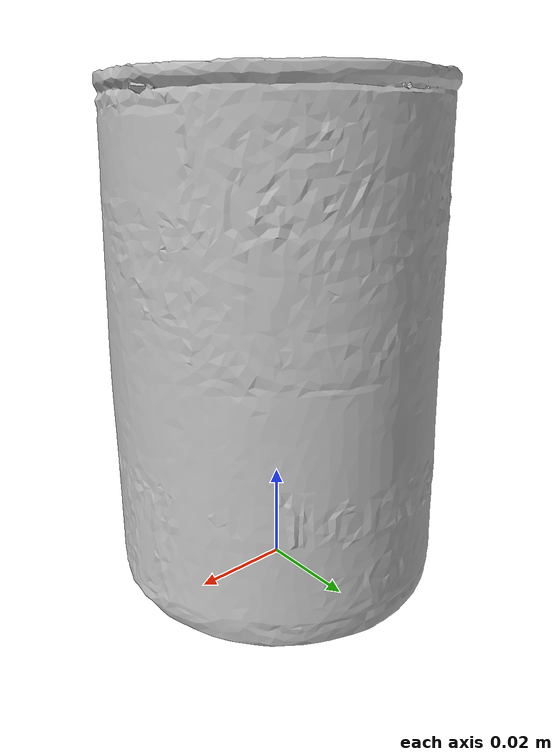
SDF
<?xml version="1.0" ?>
<sdf version="1.4">
  <model name='ycb_005_tomato_soup_can_aruco'>
    <include>
      <uri>model://ycb_005_tomato_soup_can</uri>
      <pose>0.0 0.0 0.0 0 0 0</pose>
    </include>
    <link name='marker'>
      <pose frame=''>0 0 0.1 0 0 0</pose>
      <visual name='visual'>
        <geometry>
          <box>
            <size>0.04 0.04 1e-5</size>
          </box>
        </geometry>
        <material>
          <script>
            <uri>model://aruco_visual_marker_0/materials/scripts</uri>
            <uri>model://aruco_visual_marker_0/materials/textures</uri>
            <name>ArucoVisualMarker0/Marker</name>
          </script>
          <ambient>1 1 1 1</ambient>
          <diffuse>1 1 1 1</diffuse>
          <specular>0 0 0 1</specular>
          <emissive>1 1 1 0</emissive>
          <shader type='vertex'>
            <normal_map>__default__</normal_map>
          </shader>
        </material>
        <pose frame=''>0 0 0 0 -0 0</pose>
        <cast_shadows>1</cast_shadows>
        <transparency>0</transparency>
      </visual>
      <collision name='collision'>
        <laser_retro>0</laser_retro>
        <max_contacts>10</max_contacts>
        <pose frame=''>0 0 0 0 -0 0</pose>
        <geometry>
          <box>
            <size>0.045 0.045 1e-05</size>
          </box>
        </geometry>
      </collision>
    </link>

    <link name='marker_pad'>
      <pose frame='marker'>0 0 -1e-5 0 -0 0</pose>
      <visual name='visual'>
        <geometry>
          <box>
            <size>0.045 0.045 1e-5</size>
          </box>
        </geometry>
        <material>
          <lighting>1</lighting>
          <script>
            <uri>file://media/materials/scripts/gazebo.material</uri>
            <name>Gazebo/White</name>
          </script>
          <ambient>0.3 0.3 0.3 1</ambient>
          <diffuse>0.7 0.7 0.7 1</diffuse>
          <specular>0.01 0.01 0.01 1</specular>
          <emissive>1 1 1 0</emissive>
          <shader type='vertex'>
            <normal_map>__default__</normal_map>
          </shader>
        </material>
        <cast_shadows>1</cast_shadows>
        <transparency>0</transparency>
      </visual>
      <collision name='collision'>
        <laser_retro>0</laser_retro>
        <max_contacts>10</max_contacts>
        <pose frame=''>0 0 0 0 -0 0</pose>
        <geometry>
          <box>
            <size>0.045 0.045 1e-5</size>
          </box>
        </geometry>
      </collision>
    </link>

    <joint name='marker_JOINT_marker_pad' type='fixed'>
      <parent>marker</parent>
      <child>marker_pad</child>
    </joint>
    <joint name='marker_can_joint' type='fixed'>
      <parent>marker</parent>
      <child>ycb_005_tomato_soup_can::body</child>
    </joint>

    <allow_auto_disable>1</allow_auto_disable>

  </model>
</sdf>

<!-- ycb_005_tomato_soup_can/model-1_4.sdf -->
<sdf version="1.4">
  <model name='ycb_005_tomato_soup_can'>
    <link name='body'>
      <inertial>
        <mass>0.349</mass>
        <pose>0 0 0.0500258328067 0 0 0</pose>
        <inertia>
          <ixx>0.000349926494745</ixx>
          <ixy>-1.46031435577e-07</ixy>
          <ixz>-8.09615684957e-07</ixz>
          <iyy>0.000352671686652</iyy>
          <iyz>3.54459054371e-07</iyz>
          <izz>0.000191836705141</izz>
        </inertia>
      </inertial>
      <visual name='ycb_005_tomato_soup_can_visual'>
        <pose>0 0 0 0 0 0</pose>
        <geometry>
          <mesh>
            <uri>model://ycb_005_tomato_soup_can/meshes/textured.dae</uri>
          </mesh>
        </geometry>
      </visual>
      <collision name='ycb_005_tomato_soup_can_collision'>
        <pose>0 0 0 0 0 0</pose>
        <geometry>
          <mesh>
            <uri>model://ycb_005_tomato_soup_can/meshes/nontextured.stl</uri>
          </mesh>
        </geometry>
        <max_contacts>10</max_contacts>
        <surface>
          <contact>
            <ode>
              <kp>1e15</kp>
              <kd>1e13</kd>
            </ode>
          </contact>
        </surface>
      </collision>
    </link>
  </model>
</sdf>
